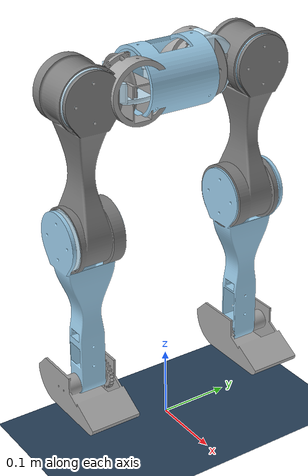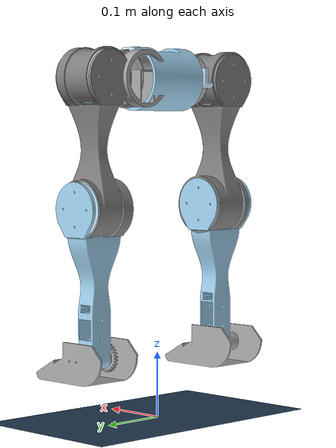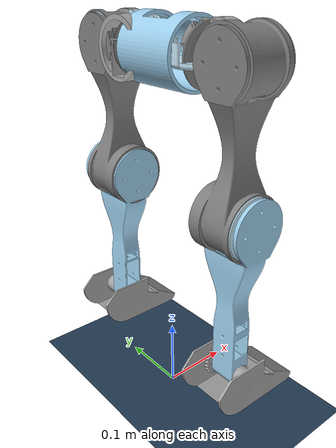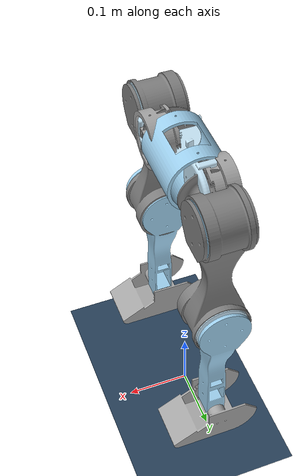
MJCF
<mujoco model="flexwalk_v2">

    <compiler angle="radian"/>
    <option gravity="0 0 -9.81" timestep="0.001"/>

    <!-- VISUAL                                                    -->

    <visual>
        <headlight diffuse="0.6 0.6 0.6" ambient="0.3 0.3 0.3" specular="0 0 0"/>
        <rgba haze="0.15 0.25 0.35 1"/>
        <global azimuth="160" elevation="-10"/>
        <quality shadowsize="8192"/>
    </visual>

    <!-- ASSETS                                                     -->

    <asset>
        <mesh
            name="Hip_pitch_giver"
            content_type="model/stl"
            file="meshes/Hip_pitch_giver.stl"/>

        <mesh
            name="Hip_pitch_motor_holder"
            content_type="model/stl"
            file="meshes/Hip_pitch_motor_holder.stl"/>

        <mesh
            name="Hip_roll_giver"
            content_type="model/stl"
            file="meshes/Hip_roll_giver.stl"/>

        <mesh
            name="Hip_roll_motor_holder"
            content_type="model/stl"
            file="meshes/Hip_roll_motor_holder.stl"/>

        <mesh
            name="Hip_roll_support"
            content_type="model/stl"
            file="meshes/Hip_roll_support.stl"/>

        <mesh
            name="Hips_connector"
            content_type="model/stl"
            file="meshes/Hips_connector.stl"/>

        <mesh
            name="Knee_pitch_giver"
            content_type="model/stl"
            file="meshes/Knee_pitch_giver.stl"/>

        <mesh
            name="Knee_pitch_support"
            content_type="model/stl"
            file="meshes/Knee_pitch_support.stl"/>

        <mesh
            name="Left_calf"
            content_type="model/stl"
            file="meshes/Left_calf.stl"/>

        <mesh
            name="Left_foot"
            content_type="model/stl"
            file="meshes/Left_foot.stl"/>

        <mesh
            name="Right_foot"
            content_type="model/stl"
            file="meshes/Right_foot.stl"/>

        <mesh
            name="Thigh"
            content_type="model/stl"
            file="meshes/Thigh.stl"/>

        <texture type="skybox" builtin="gradient" rgb1="0.3 0.5 0.7" rgb2="0 0 0" width="512" height="3072"/>
        <texture type="2d" name="groundplane" builtin="checker" mark="edge" rgb1="0.2 0.3 0.4" rgb2="0.1 0.2 0.3"
            markrgb="0.8 0.8 0.8" width="300" height="300"/>
        <material name="groundplane" texture="groundplane" texuniform="true" texrepeat="5 5" reflectance="0.2"/>
    </asset>

    <worldbody>

        <light pos="0 0 1.5" dir="0 0 -1" directional="true"/>
        <geom name="ground" size="0 0 0.05" type="plane" material="groundplane"/>

        <!-- HIPS CONNECTOR                                             -->
        <body
            name="hips_connector"
            pos="0 0 0.51"
            euler="3.14159 0 0">
            <freejoint name="world_to_hip_joint"/>

            <inertial
                pos="0 0 0.0044039"
                quat="0 0 0 1"
                mass="0.153407"
                diaginertia="0.000275111 0.000302809 0.000303046"/>

            <geom
                pos="0 0 0"
                quat="1 0 0 0"
                type="mesh"
                rgba="0.615686 0.811765 0.929412 1"
                mesh="Hips_connector"
                contype="1"
                conaffinity="1"/>

            <!-- RIGHT LEG HIP PITCH MOTOR HOLDER                         -->
            <body
                name="hip_pitch_motor_holder_1"
                pos="0 0.04 -0.04209"
                quat="-9.3818395e-07 -0.70710548 0.70710808 9.3818739e-07">
                <inertial
                    pos="-0.00197261 0 -0.0435368"
                    quat="0 0.7094726 0 -0.70473302"
                    mass="5.63389e-05"
                    diaginertia="4.8675339e-08 5.08497e-08 8.1202561e-08"/>

                <geom
                    pos="-0.02 0 -0.054447"
                    quat="1 0 0 0"
                    type="mesh"
                    rgba="0.647059 0.647059 0.647059 1"
                    mesh="Hip_pitch_motor_holder"
                    contype="0"
                    conaffinity="0"/>

                <body
                    name="hip_pitch_giver_1"
                    pos="-0.02375 0 -0.042027"
                    quat="0.70710548 0.70710808 0 0">
                    <inertial
                        pos="-0.033395644 0.0018655697 -0.0030632856"
                        quat="-0.036005766 0.9973185 -0.038562811 0.050717827"
                        mass="0.0001006812"
                        diaginertia="7.7779536e-08 1.4298724e-07 1.6048996e-07"/>
                    <joint
                        name="hip_pitch_r"
                        pos="0 0 0"
                        axis="-1 1.22465e-16 0"
                        damping="0.5"
                        armature ="0.01"/>

                    <geom
                        pos="0.004 0 0.01242"
                        quat="1.3267949e-06 1 0 0"
                        type="mesh"
                        rgba="0.768627 0.886275 0.952941 1"
                        mesh="Hip_pitch_giver"/>

                    <geom
                        pos="-0.061099954 -0.012547336 0.020631746"
                        quat="-0.49999816 0.50000184 -0.5 -0.5"
                        type="mesh"
                        rgba="0.498039 0.498039 0.498039 1"
                        mesh="Hip_roll_motor_holder"/>

                    <body
                        name="hip_roll_giver"
                        pos="-0.0611 -0.0001272961 0.0246317"
                        quat="0.70710678 -1.2986741e-06 0.70710678 -1.2986741e-06">
                        <inertial
                            pos="0.029317514 -0.076080861 0.0014683624"
                            quat="0.70706387 -0.0076756491 0.0079025094 -0.00010279694"
                            mass="0.000228856"
                            diaginertia="2.4370166e-07 1.6289747e-06 1.7372666e-06"/>
                        <joint
                            name="hip_roll_r"
                            pos="0 0 0"
                            axis="1 0 0"
                            damping="0.5"
                            armature="0.01"/>

                        <geom
                            pos="0.004 0 0.01242"
                            quat="-1.3267949e-06 1 0 0"
                            type="mesh"
                            rgba="0.768627 0.886275 0.952941 1"
                            mesh="Hip_roll_giver"/>

                        <geom
                            pos="0.0035 0.01242 0"
                            quat="0.70710548 0.70710808 0 0"
                            type="mesh"
                            rgba="0.615686 0.811765 0.929412 1"
                            mesh="Hip_roll_support"/>

                        <geom
                            pos="0.027000614 -0.20242001 -0.021000863"
                            quat="0.50000066 -0.4999975 -0.50000066 -0.50000117"
                            type="mesh"
                            rgba="0.498039 0.498039 0.498039 1"
                            mesh="Thigh"/>

                        <body
                            name="knee_pitch_giver"
                            pos="0.027000596 -0.18999999 -0.025000817"
                            quat="0.50000066 -0.4999975 -0.50000066 -0.50000117">
                            <inertial
                                pos="0.032571858 4.4041769e-06 -0.053467474"
                                quat="-0.49301271 -0.49305128 0.4796545 0.50685546"
                                mass="0.000186377"
                                diaginertia="1.8946457e-07 1.1010012e-06 1.18185e-06"/>
                            <joint
                                name="knee_pitch_r"
                                pos="0 0 0"
                                axis="-1 0 0"
                                damping="0.5"
                                armature="0.01"/>

                            <geom
                                pos="0.004 0 -0.01242"
                                quat="1 0 0 0"
                                type="mesh"
                                rgba="0.768627 0.886275 0.952941 1"
                                mesh="Knee_pitch_giver"/>

                            <geom
                                pos="0.02225 0 -0.251345"
                                quat="-1.3267949e-06 0 0 1"
                                type="mesh"
                                rgba="0.615686 0.811765 0.929412 1"
                                mesh="Left_calf"/>

                            <geom
                                pos="0.112 0 0.01242"
                                quat="0 1.3267949e-06 1 -1.3267949e-06"
                                type="mesh"
                                rgba="0.615686 0.811765 0.929412 1"
                                mesh="Knee_pitch_support"/>

                            <body
                                name="right_foot"
                                pos="0.0346819 0 -0.218345"
                                quat="1 0 0 0">
                                <inertial
                                    pos="-0.0151793 -0.0127379 -0.0104019"
                                    quat="0.70071741 0.09276484 -0.0970593 -0.011366466"
                                    mass="0.000104954"
                                    diaginertia="9.2363003e-08 1.3531351e-07 1.8623818e-07"/>
                                <joint
                                    name="ankle_pitch_r"
                                    pos="0 0 0"
                                    axis="-1 -1.15648e-16 0"
                                    damping="0.5"
                                    armature="0.01"/>

                                <geom
                                    pos="-0.0904319 0 -0.033"
                                    quat="1 0 0 0"
                                    type="mesh"
                                    rgba="0.647059 0.647059 0.647059 1"
                                    mesh="Right_foot"/>
                            </body>
                        </body>
                    </body>
                </body>
            </body>

            <!-- LEFT LEG HIP PITCH MOTOR HOLDER                         -->
            <body
                name="hip_pitch_motor_holder"
                pos="0 -0.04 -0.04209"
                quat="9.3818395e-07 0.70710548 0.70710808 9.3818739e-07">
                <inertial
                    pos="-0.00197261 0 -0.0435368"
                    quat="0 0.7094726 0 -0.70473302"
                    mass="5.63389e-05"
                    diaginertia="4.8675339e-08 5.08497e-08 8.1202561e-08"/>

                <geom
                    pos="-0.02 0 -0.054447"
                    quat="1 0 0 0"
                    type="mesh"
                    rgba="0.647059 0.647059 0.647059 1"
                    mesh="Hip_pitch_motor_holder"
                    contype="0"
                    conaffinity="0"/>

                <body
                    name="hip_pitch_giver"
                    pos="-0.02375 0 -0.042027"
                    quat="1 0 0 0">
                    <inertial
                        pos="-0.033395648 0.0030631674 0.0018656923"
                        quat="0.73067178 -0.67974951 0.063131082 -0.0085920026"
                        mass="0.0001006812"
                        diaginertia="7.7779537e-08 1.4298725e-07 1.6048996e-07"/>
                    <joint
                        name="hip_pitch_l"
                        pos="0 0 0"
                        axis="1 0 0"
                        damping="0.5"
                        armature="0.01"/>

                    <geom
                        pos="0.004 0 -0.01242"
                        quat="1 0 0 0"
                        type="mesh"
                        rgba="0.768627 0.886275 0.952941 1"
                        mesh="Hip_pitch_giver"/>

                    <geom
                        pos="-0.061099924 -0.020631912 -0.0125472"
                        quat="0.70710548 0 0 0.70710808"
                        type="mesh"
                        rgba="0.498039 0.498039 0.498039 1"
                        mesh="Hip_roll_motor_holder"/>

                    <body
                        name="hip_roll_giver_1"
                        pos="-0.06109991 -0.024631912 -0.000127175"
                        quat="-0.49999816 0.5 0.50000184 -0.5">
                        <inertial
                            pos="0.030842128 0.076080706 -0.0014684534"
                            quat="0.70704727 -0.0092794797 0.0090672773 -0.00010304191"
                            mass="0.000228856"
                            diaginertia="2.4268439e-07 1.6285392e-06 1.7358136e-06"/>
                        <joint
                            name="hip_roll_l"
                            pos="0 0 0"
                            axis="1 0 0"
                            damping="0.5"
                            armature="0.01"/>

                        <geom
                            pos="0.004 0 0.01242"
                            quat="1.3267949e-06 1 0 0"
                            type="mesh"
                            rgba="0.768627 0.886275 0.952941 1"
                            mesh="Hip_roll_giver"/>

                        <geom
                            pos="0.029000744 0.2024198 0.021000744"
                            quat="0.49999816 0.50000184 0.5 -0.5"
                            type="mesh"
                            rgba="0.498039 0.498039 0.498039 1"
                            mesh="Thigh"/>

                        <geom
                            pos="0.10750003 0.012419873 0"
                            quat="-9.3818395e-07 9.3818739e-07 0.70710808 -0.70710548"
                            type="mesh"
                            rgba="0.615686 0.811765 0.929412 1"
                            mesh="Hip_roll_support"/>

                        <body
                            name="knee_pitch_giver_1"
                            pos="0.029000698 0.18999979 0.025000698"
                            quat="0.49999816 0.50000184 0.5 -0.5">
                            <inertial
                                pos="0.032571858 4.4062485e-06 -0.05405858"
                                quat="-0.49297668 -0.49301509 0.47955092 0.50689061"
                                mass="0.000186377"
                                diaginertia="1.8945364e-07 1.1058958e-06 1.1867337e-06"/>
                            <joint
                                name="knee_pitch_l"
                                pos="0 0 0"
                                axis="1 0 0"
                                damping="0.5"
                                armature="0.01"/>

                            <geom
                                pos="0.004 0 -0.01242"
                                quat="1 0 0 0"
                                type="mesh"
                                rgba="0.768627 0.886275 0.952941 1"
                                mesh="Knee_pitch_giver"/>

                            <geom
                                pos="0.02225 0 -0.25218"
                                quat="-1.3267949e-06 0 0 1"
                                type="mesh"
                                rgba="0.615686 0.811765 0.929412 1"
                                mesh="Left_calf"/>

                            <geom
                                pos="0.004 0 -0.01242"
                                quat="1 0 0 0"
                                type="mesh"
                                rgba="0.615686 0.811765 0.929412 1"
                                mesh="Knee_pitch_support"/>

                            <body
                                name="left_foot"
                                pos="0.0346819 0 -0.21918"
                                quat="-1.3267949e-06 0 0 1">
                                <inertial
                                    pos="0.0151793 -0.0127379 -0.0104019"
                                    quat="0.70210235 0.085771154 -0.081976147 -0.011344045"
                                    mass="0.000104954"
                                    diaginertia="9.2363003e-08 1.3531351e-07 1.8623818e-07"/>
                                <joint
                                    name="ankle_pitch_l"
                                    pos="0 0 0"
                                    axis="-1 -1.15648e-16 0"
                                    damping="0.5"
                                    armature="0.01"/>

                                <geom
                                    pos="0.0144319 0 -0.033"
                                    quat="1 0 0 0"
                                    type="mesh"
                                    rgba="0.647059 0.647059 0.647059 1"
                                    mesh="Left_foot"/>
                            </body>
                        </body>
                    </body>
                </body>
            </body>
        </body>

    </worldbody>

        <!-- ACTUATORS                                                 -->

        <actuator>

            <position
                name="left_hip_pitch"
                joint="hip_pitch_l"
                ctrlrange="-3.14159 3.14159"
                kp="20"
                kv="0.8"
                ctrllimited="true"
                forcerange="-2.9 2.9"
                forcelimited="true"
                />

            <position
                name="left_hip_roll"
                joint="hip_roll_l"
                ctrlrange="-0.4 3.73"
                kp="20"
                kv="0.8"
                ctrllimited="true"
                forcerange="-2.9 2.9"
                forcelimited="true"
                />

            <position
                name="left_knee_pitch"
                joint="knee_pitch_l"
                ctrlrange="-2.49 2.64"
                kp="20"
                kv="0.8"
                ctrllimited="true"
                forcerange="-2.9 2.9"
                forcelimited="true"
                />

            <position
                name="left_ankle_pitch"
                joint="ankle_pitch_l"
                ctrlrange="-1.6 1.06"
                kp="20"
                kv="0.8"
                ctrllimited="true"
                forcerange="-2.9 2.9"
                forcelimited="true"
                />

            <position
                name="right_hip_pitch"
                joint="hip_pitch_r"
                ctrlrange="-3.14159 3.14159"
                kp="20"
                kv="0.8"
                ctrllimited="true"
                forcerange="-2.9 2.9"
                forcelimited="true"
                />

            <position
                name="right_hip_roll"
                joint="hip_roll_r"
                ctrlrange="-0.4 3.73"
                kp="20"
                kv="0.8"
                ctrllimited="true"
                forcerange="-2.9 2.9"
                forcelimited="true"
                />

            <position
                name="right_knee_pitch"
                joint="knee_pitch_r"
                ctrlrange="-2.48 2.64"
                kp="20"
                kv="0.8"
                ctrllimited="true"
                forcerange="-2.9 2.9"
                forcelimited="true"
                />

            <position
                name="right_ankle_pitch"
                joint="ankle_pitch_r"
                ctrlrange="-1.6 1.06"
                kp="20"
                kv="0.8"
                ctrllimited="true"
                forcerange="-2.9 2.9"
                forcelimited="true"
                />

        </actuator>

</mujoco>
